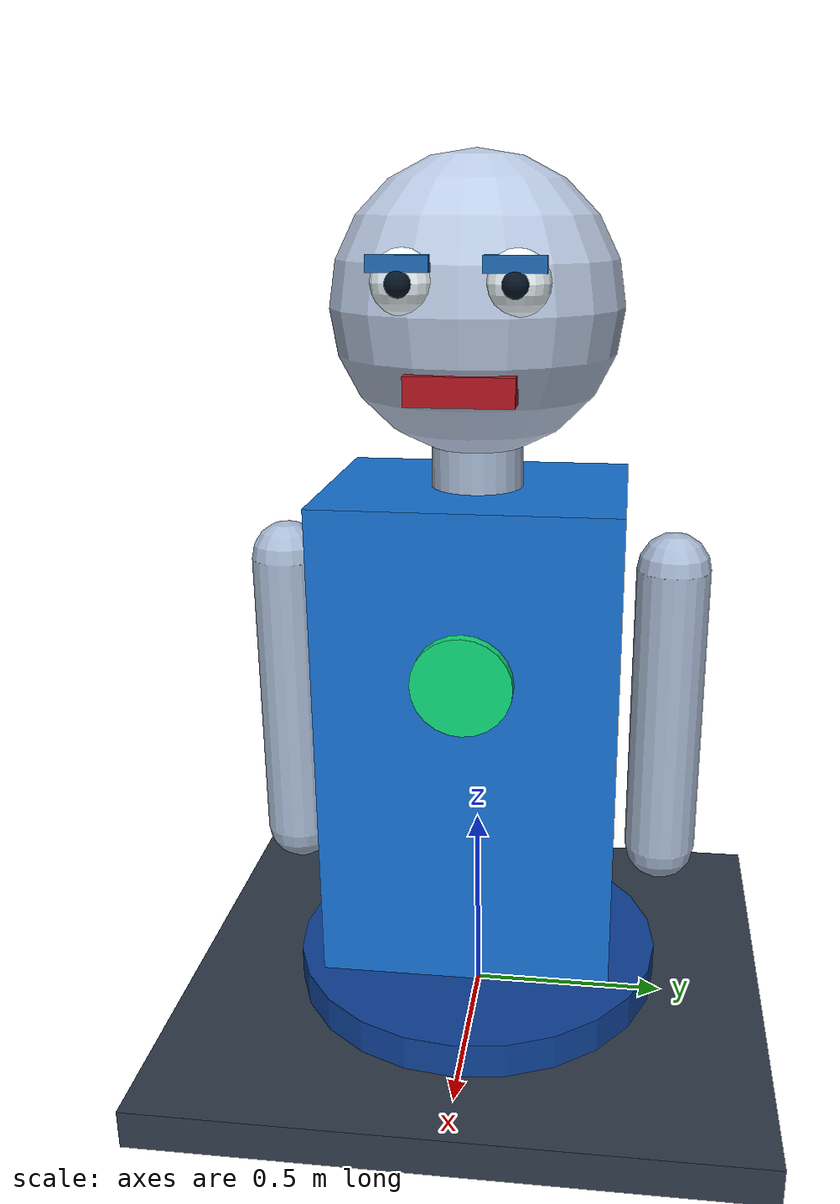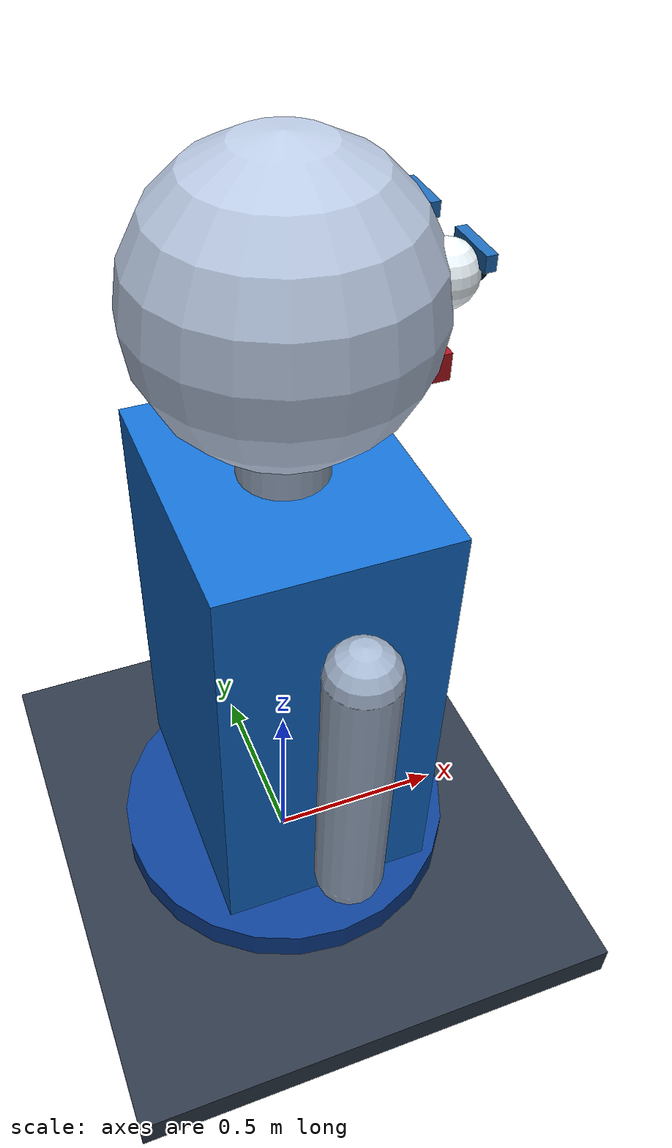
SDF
<?xml version="1.0"?>
<sdf version="1.9">
  <world name="camera_consent_avatar_world">
    <plugin filename="gz-sim-physics-system"
            name="gz::sim::systems::Physics"/>
    <plugin filename="gz-sim-user-commands-system"
            name="gz::sim::systems::UserCommands"/>
    <plugin filename="gz-sim-scene-broadcaster-system"
            name="gz::sim::systems::SceneBroadcaster"/>

    <gui fullscreen="0">
      <plugin filename="MinimalScene" name="Camera consent avatar">
        <gz-gui>
          <title>Consent-controlled expression avatar</title>
          <property type="bool" key="showTitleBar">false</property>
          <property type="string" key="state">docked</property>
        </gz-gui>
        <engine>ogre</engine>
        <scene>scene</scene>
        <ambient_light>0.55 0.55 0.55</ambient_light>
        <background_color>0.06 0.08 0.12</background_color>
        <camera_pose>4.2 -4.2 2.5 0 0.12 2.34</camera_pose>
      </plugin>
      <plugin filename="GzSceneManager" name="Scene Manager"/>
      <plugin filename="EntityTree" name="Avatar entities"/>
    </gui>

    <gravity>0 0 -9.8</gravity>
    <scene>
      <ambient>0.55 0.55 0.55 1</ambient>
      <background>0.06 0.08 0.12 1</background>
      <shadows>false</shadows>
    </scene>

    <light name="key_light" type="directional">
      <pose>0 0 6 0 0 0</pose>
      <diffuse>0.9 0.9 0.9 1</diffuse>
      <specular>0.2 0.2 0.2 1</specular>
      <direction>-0.4 0.2 -1</direction>
    </light>

    <model name="studio_floor">
      <static>true</static>
      <link name="floor">
        <collision name="collision">
          <geometry><box><size>8 8 0.1</size></box></geometry>
        </collision>
        <visual name="visual">
          <geometry><box><size>8 8 0.1</size></box></geometry>
          <material>
            <ambient>0.18 0.22 0.28 1</ambient>
            <diffuse>0.18 0.22 0.28 1</diffuse>
          </material>
        </visual>
      </link>
    </model>

    <model name="consent_avatar">
      <pose>0 0 0.05 0 0 0</pose>
      <link name="base_link">
        <inertial>
          <mass>8</mass>
          <inertia><ixx>1</ixx><iyy>1</iyy><izz>1</izz></inertia>
        </inertial>
        <collision name="collision">
          <geometry><cylinder><radius>0.48</radius><length>0.18</length></cylinder></geometry>
        </collision>
        <visual name="visual">
          <geometry><cylinder><radius>0.48</radius><length>0.18</length></cylinder></geometry>
          <material><ambient>0.05 0.25 0.58 1</ambient><diffuse>0.05 0.25 0.58 1</diffuse></material>
        </visual>
      </link>
      <joint name="world_fixed" type="fixed">
        <parent>world</parent><child>base_link</child>
      </joint>

      <link name="torso_link">
        <pose relative_to="base_link">0 0 0.75 0 0 0</pose>
        <inertial><mass>3</mass><inertia><ixx>0.2</ixx><iyy>0.2</iyy><izz>0.2</izz></inertia></inertial>
        <visual name="torso">
          <geometry><box><size>0.58 0.72 1.2</size></box></geometry>
          <material><ambient>0.08 0.44 0.82 1</ambient><diffuse>0.08 0.44 0.82 1</diffuse></material>
        </visual>
        <visual name="consent_badge">
          <pose>0.31 0 0.20 0 1.5708 0</pose>
          <geometry><cylinder><radius>0.12</radius><length>0.03</length></cylinder></geometry>
          <material><ambient>0.05 0.85 0.48 1</ambient><diffuse>0.05 0.85 0.48 1</diffuse><emissive>0.02 0.2 0.08 1</emissive></material>
        </visual>
      </link>
      <joint name="torso_fixed" type="fixed">
        <parent>base_link</parent><child>torso_link</child>
      </joint>

      <link name="left_arm_link">
        <pose relative_to="torso_link">0 0.48 0.03 0 0 0</pose>
        <inertial><mass>0.4</mass><inertia><ixx>0.02</ixx><iyy>0.02</iyy><izz>0.02</izz></inertia></inertial>
        <visual name="arm"><geometry><capsule><radius>0.09</radius><length>0.75</length></capsule></geometry><material><ambient>0.65 0.72 0.82 1</ambient><diffuse>0.65 0.72 0.82 1</diffuse></material></visual>
      </link>
      <joint name="left_arm_fixed" type="fixed"><parent>torso_link</parent><child>left_arm_link</child></joint>
      <link name="right_arm_link">
        <pose relative_to="torso_link">0 -0.48 0.03 0 0 0</pose>
        <inertial><mass>0.4</mass><inertia><ixx>0.02</ixx><iyy>0.02</iyy><izz>0.02</izz></inertia></inertial>
        <visual name="arm"><geometry><capsule><radius>0.09</radius><length>0.75</length></capsule></geometry><material><ambient>0.65 0.72 0.82 1</ambient><diffuse>0.65 0.72 0.82 1</diffuse></material></visual>
      </link>
      <joint name="right_arm_fixed" type="fixed"><parent>torso_link</parent><child>right_arm_link</child></joint>

      <link name="neck_yaw_link">
        <pose relative_to="torso_link">0 0 0.72 0 0 0</pose>
        <inertial><mass>0.2</mass><inertia><ixx>0.01</ixx><iyy>0.01</iyy><izz>0.01</izz></inertia></inertial>
        <visual name="neck"><geometry><cylinder><radius>0.11</radius><length>0.24</length></cylinder></geometry><material><ambient>0.65 0.72 0.82 1</ambient><diffuse>0.65 0.72 0.82 1</diffuse></material></visual>
      </link>
      <joint name="head_yaw_joint" type="revolute">
        <parent>torso_link</parent><child>neck_yaw_link</child>
        <axis><xyz>0 0 1</xyz><limit><lower>-0.7</lower><upper>0.7</upper><effort>20</effort><velocity>2</velocity></limit></axis>
      </joint>

      <link name="head_link">
        <pose relative_to="neck_yaw_link">0 0 0.30 0 0 0</pose>
        <inertial><mass>1</mass><inertia><ixx>0.04</ixx><iyy>0.04</iyy><izz>0.04</izz></inertia></inertial>
        <visual name="head"><geometry><sphere><radius>0.34</radius></sphere></geometry><material><ambient>0.72 0.78 0.88 1</ambient><diffuse>0.72 0.78 0.88 1</diffuse></material></visual>
        <visual name="left_eye"><pose>0.29 0.12 0.07 0 0 0</pose><geometry><sphere><radius>0.07</radius></sphere></geometry><material><ambient>0.94 0.98 1 1</ambient><diffuse>0.94 0.98 1 1</diffuse></material></visual>
        <visual name="right_eye"><pose>0.29 -0.12 0.07 0 0 0</pose><geometry><sphere><radius>0.07</radius></sphere></geometry><material><ambient>0.94 0.98 1 1</ambient><diffuse>0.94 0.98 1 1</diffuse></material></visual>
        <visual name="left_pupil"><pose>0.354 0.12 0.07 0 0 0</pose><geometry><sphere><radius>0.028</radius></sphere></geometry><material><ambient>0.02 0.08 0.14 1</ambient><diffuse>0.02 0.08 0.14 1</diffuse></material></visual>
        <visual name="right_pupil"><pose>0.354 -0.12 0.07 0 0 0</pose><geometry><sphere><radius>0.028</radius></sphere></geometry><material><ambient>0.02 0.08 0.14 1</ambient><diffuse>0.02 0.08 0.14 1</diffuse></material></visual>
      </link>
      <joint name="head_roll_joint" type="revolute">
        <parent>neck_yaw_link</parent><child>head_link</child>
        <axis><xyz>1 0 0</xyz><limit><lower>-0.5</lower><upper>0.5</upper><effort>20</effort><velocity>2</velocity></limit></axis>
      </joint>

      <link name="eyelid_link">
        <pose relative_to="head_link">0.35 0 0.11 0 0 0</pose>
        <inertial><mass>0.02</mass><inertia><ixx>0.001</ixx><iyy>0.001</iyy><izz>0.001</izz></inertia></inertial>
        <visual name="left_lid"><pose>0 0.12 0 0 0 0</pose><geometry><box><size>0.025 0.13 0.035</size></box></geometry><material><ambient>0.12 0.42 0.72 1</ambient><diffuse>0.12 0.42 0.72 1</diffuse></material></visual>
        <visual name="right_lid"><pose>0 -0.12 0 0 0 0</pose><geometry><box><size>0.025 0.13 0.035</size></box></geometry><material><ambient>0.12 0.42 0.72 1</ambient><diffuse>0.12 0.42 0.72 1</diffuse></material></visual>
      </link>
      <joint name="eyelid_joint" type="prismatic">
        <parent>head_link</parent><child>eyelid_link</child>
        <axis><xyz>0 0 1</xyz><limit><lower>-0.08</lower><upper>0</upper><effort>5</effort><velocity>1</velocity></limit></axis>
      </joint>

      <link name="jaw_link">
        <pose relative_to="head_link">0.29 0 -0.15 0 0 0</pose>
        <inertial><mass>0.08</mass><inertia><ixx>0.002</ixx><iyy>0.002</iyy><izz>0.002</izz></inertia></inertial>
        <visual name="mouth"><geometry><box><size>0.08 0.24 0.065</size></box></geometry><material><ambient>0.70 0.08 0.12 1</ambient><diffuse>0.70 0.08 0.12 1</diffuse></material></visual>
      </link>
      <joint name="jaw_joint" type="revolute">
        <parent>head_link</parent><child>jaw_link</child>
        <axis><xyz>0 1 0</xyz><limit><lower>0</lower><upper>0.42</upper><effort>5</effort><velocity>2</velocity></limit></axis>
      </joint>

      <plugin filename="gz-sim-joint-position-controller-system" name="gz::sim::systems::JointPositionController">
        <joint_name>head_yaw_joint</joint_name><topic>/avatar/head_yaw</topic><p_gain>8</p_gain>
      </plugin>
      <plugin filename="gz-sim-joint-position-controller-system" name="gz::sim::systems::JointPositionController">
        <joint_name>head_roll_joint</joint_name><topic>/avatar/head_roll</topic><p_gain>8</p_gain>
      </plugin>
      <plugin filename="gz-sim-joint-position-controller-system" name="gz::sim::systems::JointPositionController">
        <joint_name>eyelid_joint</joint_name><topic>/avatar/eyelid</topic><p_gain>12</p_gain>
      </plugin>
      <plugin filename="gz-sim-joint-position-controller-system" name="gz::sim::systems::JointPositionController">
        <joint_name>jaw_joint</joint_name><topic>/avatar/jaw</topic><p_gain>10</p_gain>
      </plugin>
    </model>
  </world>
</sdf>
